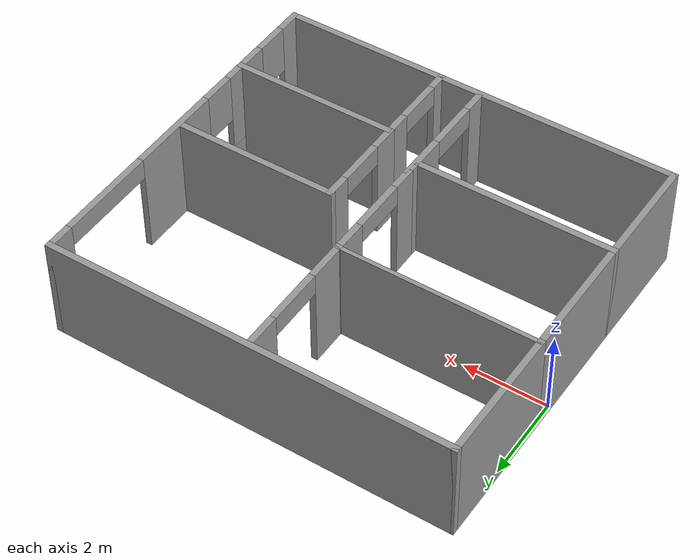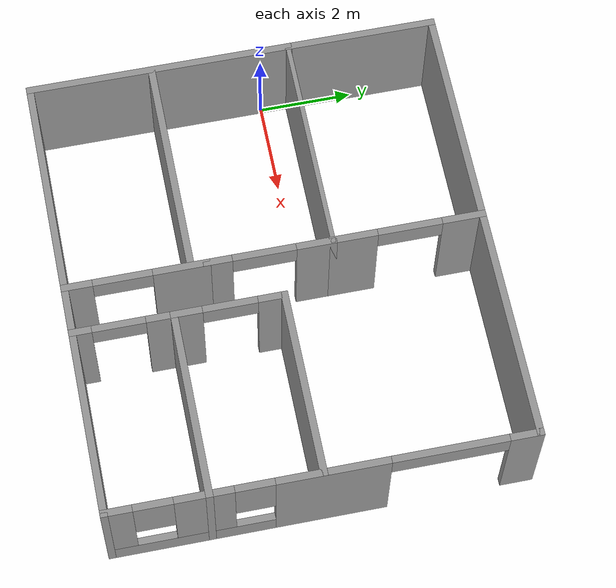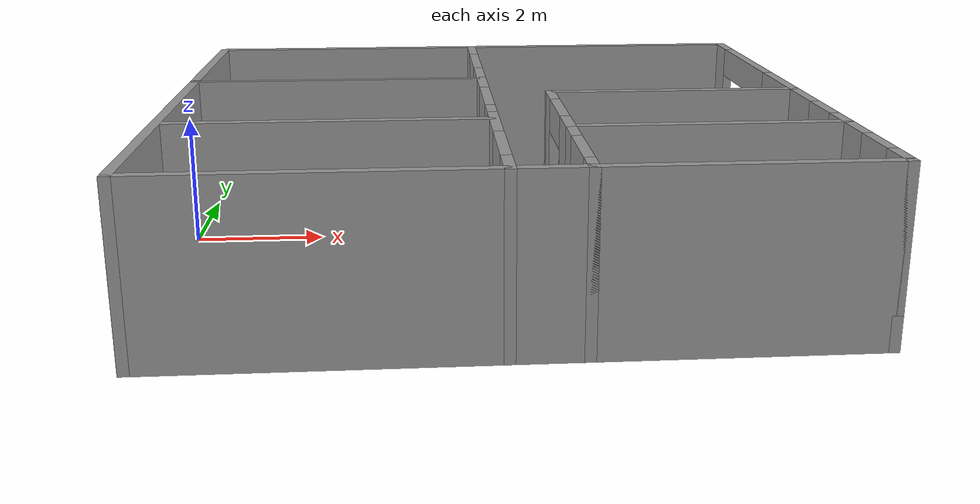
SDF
<?xml version='1.0'?>
<sdf version='1.6'>
  <model name='wall_real'>
    <pose frame=''>4.75 -0.6 0 0 -0 0</pose>
    <link name='Wall_0'>
      <collision name='Wall_0_Collision'>
        <geometry>
          <box>
            <size>3.25 0.15 2.5</size>
          </box>
        </geometry>
        <pose frame=''>0 0 1.25 0 -0 0</pose>
      </collision>
      <visual name='Wall_0_Visual'>
        <pose frame=''>0 0 1.25 0 -0 0</pose>
        <geometry>
          <box>
            <size>3.25 0.15 2.5</size>
          </box>
        </geometry>
        <material>
          <script>
            <uri>file://media/materials/scripts/gazebo.material</uri>
            <name>Gazebo/Grey</name>
          </script>
          <ambient>1 1 1 1</ambient>
        </material>
        <meta>
          <layer>0</layer>
        </meta>
      </visual>
      <pose frame=''>-4.75 2.75 0 0 -0 -1.5708</pose>
    </link>
    <link name='Wall_11'>
      <collision name='Wall_11_Collision'>
        <geometry>
          <box>
            <size>4 0.15 2.5</size>
          </box>
        </geometry>
        <pose frame=''>0 0 1.25 0 -0 0</pose>
      </collision>
      <visual name='Wall_11_Visual'>
        <pose frame=''>0 0 1.25 0 -0 0</pose>
        <geometry>
          <box>
            <size>4 0.15 2.5</size>
          </box>
        </geometry>
        <material>
          <script>
            <uri>file://media/materials/scripts/gazebo.material</uri>
            <name>Gazebo/Grey</name>
          </script>
          <ambient>1 1 1 1</ambient>
        </material>
        <meta>
          <layer>0</layer>
        </meta>
      </visual>
      <pose frame=''>2.825 -2.25 0 0 -0 3.14159</pose>
    </link>
    <link name='Wall_13'>
      <pose frame=''>0.9 -1.125 0 0 -0 -1.5708</pose>
      <visual name='Wall_13_Visual_0'>
        <pose frame=''>-0.890011 0 1.25 0 -0 0</pose>
        <geometry>
          <box>
            <size>0.619978 0.15 2.5</size>
          </box>
        </geometry>
        <material>
          <script>
            <uri>file://media/materials/scripts/gazebo.material</uri>
            <name>Gazebo/Grey</name>
          </script>
          <ambient>1 1 1 1</ambient>
        </material>
        <meta>
          <layer>0</layer>
        </meta>
      </visual>
      <collision name='Wall_13_Collision_0'>
        <geometry>
          <box>
            <size>0.619978 0.15 2.5</size>
          </box>
        </geometry>
        <pose frame=''>-0.890011 0 1.25 0 -0 0</pose>
      </collision>
      <visual name='Wall_13_Visual_1'>
        <pose frame=''>0.873674 0 1.25 0 -0 0</pose>
        <geometry>
          <box>
            <size>0.652651 0.15 2.5</size>
          </box>
        </geometry>
        <material>
          <script>
            <uri>file://media/materials/scripts/gazebo.material</uri>
            <name>Gazebo/Grey</name>
          </script>
          <ambient>1 1 1 1</ambient>
        </material>
        <meta>
          <layer>0</layer>
        </meta>
      </visual>
      <collision name='Wall_13_Collision_1'>
        <geometry>
          <box>
            <size>0.652651 0.15 2.5</size>
          </box>
        </geometry>
        <pose frame=''>0.873674 0 1.25 0 -0 0</pose>
      </collision>
      <visual name='Wall_13_Visual_2'>
        <pose frame=''>-0.016337 0 2.25 0 -0 0</pose>
        <geometry>
          <box>
            <size>1.12737 0.15 0.5</size>
          </box>
        </geometry>
        <material>
          <script>
            <uri>file://media/materials/scripts/gazebo.material</uri>
            <name>Gazebo/Grey</name>
          </script>
          <ambient>1 1 1 1</ambient>
        </material>
        <meta>
          <layer>0</layer>
        </meta>
      </visual>
      <collision name='Wall_13_Collision_2'>
        <geometry>
          <box>
            <size>1.12737 0.15 0.5</size>
          </box>
        </geometry>
        <pose frame=''>-0.016337 0 2.25 0 -0 0</pose>
      </collision>
    </link>
    <link name='Wall_14'>
      <pose frame=''>0.9 -3.275 0 0 -0 -1.5708</pose>
      <visual name='Wall_14_Visual_0'>
        <pose frame=''>-0.778157 0 1.25 0 -0 0</pose>
        <geometry>
          <box>
            <size>0.643686 0.15 2.5</size>
          </box>
        </geometry>
        <material>
          <script>
            <uri>file://media/materials/scripts/gazebo.material</uri>
            <name>Gazebo/Grey</name>
          </script>
          <ambient>1 1 1 1</ambient>
        </material>
        <meta>
          <layer>0</layer>
        </meta>
      </visual>
      <collision name='Wall_14_Collision_0'>
        <geometry>
          <box>
            <size>0.643686 0.15 2.5</size>
          </box>
        </geometry>
        <pose frame=''>-0.778157 0 1.25 0 -0 0</pose>
      </collision>
      <visual name='Wall_14_Visual_1'>
        <pose frame=''>0.868038 0 1.25 0 -0 0</pose>
        <geometry>
          <box>
            <size>0.463923 0.15 2.5</size>
          </box>
        </geometry>
        <material>
          <script>
            <uri>file://media/materials/scripts/gazebo.material</uri>
            <name>Gazebo/Grey</name>
          </script>
          <ambient>1 1 1 1</ambient>
        </material>
        <meta>
          <layer>0</layer>
        </meta>
      </visual>
      <collision name='Wall_14_Collision_1'>
        <geometry>
          <box>
            <size>0.463923 0.15 2.5</size>
          </box>
        </geometry>
        <pose frame=''>0.868038 0 1.25 0 -0 0</pose>
      </collision>
      <visual name='Wall_14_Visual_2'>
        <pose frame=''>0.089881 0 2.25 0 -0 0</pose>
        <geometry>
          <box>
            <size>1.09239 0.15 0.5</size>
          </box>
        </geometry>
        <material>
          <script>
            <uri>file://media/materials/scripts/gazebo.material</uri>
            <name>Gazebo/Grey</name>
          </script>
          <ambient>1 1 1 1</ambient>
        </material>
        <meta>
          <layer>0</layer>
        </meta>
      </visual>
      <collision name='Wall_14_Collision_2'>
        <geometry>
          <box>
            <size>1.09239 0.15 0.5</size>
          </box>
        </geometry>
        <pose frame=''>0.089881 0 2.25 0 -0 0</pose>
      </collision>
    </link>
    <link name='Wall_16'>
      <pose frame=''>-0.1 -0.1 0 0 -0 -1.5708</pose>
      <visual name='Wall_16_Visual_0'>
        <pose frame=''>-0.957502 0 1.25 0 -0 0</pose>
        <geometry>
          <box>
            <size>0.834995 0.15 2.5</size>
          </box>
        </geometry>
        <material>
          <script>
            <uri>file://media/materials/scripts/gazebo.material</uri>
            <name>Gazebo/Grey</name>
          </script>
          <ambient>1 1 1 1</ambient>
        </material>
        <meta>
          <layer>0</layer>
        </meta>
      </visual>
      <collision name='Wall_16_Collision_0'>
        <geometry>
          <box>
            <size>0.834995 0.15 2.5</size>
          </box>
        </geometry>
        <pose frame=''>-0.957502 0 1.25 0 -0 0</pose>
      </collision>
      <visual name='Wall_16_Visual_1'>
        <pose frame=''>1.07681 0 1.25 0 -0 0</pose>
        <geometry>
          <box>
            <size>0.59638 0.15 2.5</size>
          </box>
        </geometry>
        <material>
          <script>
            <uri>file://media/materials/scripts/gazebo.material</uri>
            <name>Gazebo/Grey</name>
          </script>
          <ambient>1 1 1 1</ambient>
        </material>
        <meta>
          <layer>0</layer>
        </meta>
      </visual>
      <collision name='Wall_16_Collision_1'>
        <geometry>
          <box>
            <size>0.59638 0.15 2.5</size>
          </box>
        </geometry>
        <pose frame=''>1.07681 0 1.25 0 -0 0</pose>
      </collision>
      <visual name='Wall_16_Visual_2'>
        <pose frame=''>0.119307 0 2.25 0 -0 0</pose>
        <geometry>
          <box>
            <size>1.31862 0.15 0.5</size>
          </box>
        </geometry>
        <material>
          <script>
            <uri>file://media/materials/scripts/gazebo.material</uri>
            <name>Gazebo/Grey</name>
          </script>
          <ambient>1 1 1 1</ambient>
        </material>
        <meta>
          <layer>0</layer>
        </meta>
      </visual>
      <collision name='Wall_16_Collision_2'>
        <geometry>
          <box>
            <size>1.31862 0.15 0.5</size>
          </box>
        </geometry>
        <pose frame=''>0.119307 0 2.25 0 -0 0</pose>
      </collision>
    </link>
    <link name='Wall_18'>
      <pose frame=''>-0.1 -2.85 0 0 -0 -1.5708</pose>
      <visual name='Wall_18_Visual_0'>
        <pose frame=''>-0.933477 0 1.25 0 -0 0</pose>
        <geometry>
          <box>
            <size>1.18305 0.15 2.5</size>
          </box>
        </geometry>
        <material>
          <script>
            <uri>file://media/materials/scripts/gazebo.material</uri>
            <name>Gazebo/Grey</name>
          </script>
          <ambient>1 1 1 1</ambient>
        </material>
        <meta>
          <layer>0</layer>
        </meta>
      </visual>
      <collision name='Wall_18_Collision_0'>
        <geometry>
          <box>
            <size>1.18305 0.15 2.5</size>
          </box>
        </geometry>
        <pose frame=''>-0.933477 0 1.25 0 -0 0</pose>
      </collision>
      <visual name='Wall_18_Visual_1'>
        <pose frame=''>1.20344 0 1.25 0 -0 0</pose>
        <geometry>
          <box>
            <size>0.643126 0.15 2.5</size>
          </box>
        </geometry>
        <material>
          <script>
            <uri>file://media/materials/scripts/gazebo.material</uri>
            <name>Gazebo/Grey</name>
          </script>
          <ambient>1 1 1 1</ambient>
        </material>
        <meta>
          <layer>0</layer>
        </meta>
      </visual>
      <collision name='Wall_18_Collision_1'>
        <geometry>
          <box>
            <size>0.643126 0.15 2.5</size>
          </box>
        </geometry>
        <pose frame=''>1.20344 0 1.25 0 -0 0</pose>
      </collision>
      <visual name='Wall_18_Visual_2'>
        <pose frame=''>0.26996 0 2.25 0 -0 0</pose>
        <geometry>
          <box>
            <size>1.22383 0.15 0.5</size>
          </box>
        </geometry>
        <material>
          <script>
            <uri>file://media/materials/scripts/gazebo.material</uri>
            <name>Gazebo/Grey</name>
          </script>
          <ambient>1 1 1 1</ambient>
        </material>
        <meta>
          <layer>0</layer>
        </meta>
      </visual>
      <collision name='Wall_18_Collision_2'>
        <geometry>
          <box>
            <size>1.22383 0.15 0.5</size>
          </box>
        </geometry>
        <pose frame=''>0.26996 0 2.25 0 -0 0</pose>
      </collision>
    </link>
    <link name='Wall_2'>
      <collision name='Wall_2_Collision'>
        <geometry>
          <box>
            <size>5.65 0.15 2.5</size>
          </box>
        </geometry>
        <pose frame=''>0 0 1.25 0 -0 0</pose>
      </collision>
      <visual name='Wall_2_Visual'>
        <pose frame=''>0 0 1.25 0 -0 0</pose>
        <geometry>
          <box>
            <size>5.65 0.15 2.5</size>
          </box>
        </geometry>
        <material>
          <script>
            <uri>file://media/materials/scripts/gazebo.material</uri>
            <name>Gazebo/Grey</name>
          </script>
          <ambient>1 1 1 1</ambient>
        </material>
        <meta>
          <layer>0</layer>
        </meta>
      </visual>
      <pose frame=''>-4.75 -1.55 0 0 -0 -1.5708</pose>
    </link>
    <link name='Wall_20'>
      <collision name='Wall_20_Collision'>
        <geometry>
          <box>
            <size>4.8 0.15 2.5</size>
          </box>
        </geometry>
        <pose frame=''>0 0 1.25 0 -0 0</pose>
      </collision>
      <visual name='Wall_20_Visual'>
        <pose frame=''>0 0 1.25 0 -0 0</pose>
        <geometry>
          <box>
            <size>4.8 0.15 2.5</size>
          </box>
        </geometry>
        <material>
          <script>
            <uri>file://media/materials/scripts/gazebo.material</uri>
            <name>Gazebo/Grey</name>
          </script>
          <ambient>1 1 1 1</ambient>
        </material>
        <meta>
          <layer>0</layer>
        </meta>
      </visual>
      <pose frame=''>-2.425 -1.72408 0 0 -0 3.14159</pose>
    </link>
    <link name='Wall_22'>
      <pose frame=''>-0.1 2.75 0 0 -0 1.5708</pose>
      <visual name='Wall_22_Visual_0'>
        <pose frame=''>-1.12521 0 1.25 0 -0 0</pose>
        <geometry>
          <box>
            <size>0.999582 0.15 2.5</size>
          </box>
        </geometry>
        <material>
          <script>
            <uri>file://media/materials/scripts/gazebo.material</uri>
            <name>Gazebo/Grey</name>
          </script>
          <ambient>1 1 1 1</ambient>
        </material>
        <meta>
          <layer>0</layer>
        </meta>
      </visual>
      <collision name='Wall_22_Collision_0'>
        <geometry>
          <box>
            <size>0.999582 0.15 2.5</size>
          </box>
        </geometry>
        <pose frame=''>-1.12521 0 1.25 0 -0 0</pose>
      </collision>
      <visual name='Wall_22_Visual_1'>
        <pose frame=''>1.16953 0 1.25 0 -0 0</pose>
        <geometry>
          <box>
            <size>0.910936 0.15 2.5</size>
          </box>
        </geometry>
        <material>
          <script>
            <uri>file://media/materials/scripts/gazebo.material</uri>
            <name>Gazebo/Grey</name>
          </script>
          <ambient>1 1 1 1</ambient>
        </material>
        <meta>
          <layer>0</layer>
        </meta>
      </visual>
      <collision name='Wall_22_Collision_1'>
        <geometry>
          <box>
            <size>0.910936 0.15 2.5</size>
          </box>
        </geometry>
        <pose frame=''>1.16953 0 1.25 0 -0 0</pose>
      </collision>
      <visual name='Wall_22_Visual_2'>
        <pose frame=''>0.044323 0 2.25 0 -0 0</pose>
        <geometry>
          <box>
            <size>1.33948 0.15 0.5</size>
          </box>
        </geometry>
        <material>
          <script>
            <uri>file://media/materials/scripts/gazebo.material</uri>
            <name>Gazebo/Grey</name>
          </script>
          <ambient>1 1 1 1</ambient>
        </material>
        <meta>
          <layer>0</layer>
        </meta>
      </visual>
      <collision name='Wall_22_Collision_2'>
        <geometry>
          <box>
            <size>1.33948 0.15 0.5</size>
          </box>
        </geometry>
        <pose frame=''>0.044323 0 2.25 0 -0 0</pose>
      </collision>
    </link>
    <link name='Wall_24'>
      <collision name='Wall_24_Collision'>
        <geometry>
          <box>
            <size>9.65 0.15 2.5</size>
          </box>
        </geometry>
        <pose frame=''>0 0 1.25 0 -0 0</pose>
      </collision>
      <visual name='Wall_24_Visual'>
        <pose frame=''>0 0 1.25 0 -0 0</pose>
        <geometry>
          <box>
            <size>9.65 0.15 2.5</size>
          </box>
        </geometry>
        <material>
          <script>
            <uri>file://media/materials/scripts/gazebo.material</uri>
            <name>Gazebo/Grey</name>
          </script>
          <ambient>1 1 1 1</ambient>
        </material>
        <meta>
          <layer>0</layer>
        </meta>
      </visual>
      <pose frame=''>-0 4.3 0 0 -0 0</pose>
    </link>
    <link name='Wall_26'>
      <collision name='Wall_26_Collision'>
        <geometry>
          <box>
            <size>9.65 0.15 2.5</size>
          </box>
        </geometry>
        <pose frame=''>0 0 1.25 0 -0 0</pose>
      </collision>
      <visual name='Wall_26_Visual'>
        <pose frame=''>0 0 1.25 0 -0 0</pose>
        <geometry>
          <box>
            <size>9.65 0.15 2.5</size>
          </box>
        </geometry>
        <material>
          <script>
            <uri>file://media/materials/scripts/gazebo.material</uri>
            <name>Gazebo/Grey</name>
          </script>
          <ambient>1 1 1 1</ambient>
        </material>
        <meta>
          <layer>0</layer>
        </meta>
      </visual>
      <pose frame=''>-0 -4.3 0 0 -0 0</pose>
    </link>
    <link name='Wall_4'>
      <collision name='Wall_4_Collision'>
        <geometry>
          <box>
            <size>4.75 0.1 2.5</size>
          </box>
        </geometry>
        <pose frame=''>0 0 1.25 0 -0 0</pose>
      </collision>
      <visual name='Wall_4_Visual'>
        <pose frame=''>0 0 1.25 0 -0 0</pose>
        <geometry>
          <box>
            <size>4.75 0.1 2.5</size>
          </box>
        </geometry>
        <material>
          <script>
            <uri>file://media/materials/scripts/gazebo.material</uri>
            <name>Gazebo/Grey</name>
          </script>
          <ambient>1 1 1 1</ambient>
        </material>
        <meta>
          <layer>0</layer>
        </meta>
      </visual>
      <pose frame=''>-2.425 1.2 0 0 -0 0</pose>
    </link>
    <link name='Wall_6'>
      <pose frame=''>4.75 -0 0 0 -0 -1.5708</pose>
      <visual name='Wall_6_Visual_0'>
        <pose frame=''>-4.03377 0 1.25 0 -0 0</pose>
        <geometry>
          <box>
            <size>0.682464 0.15 2.5</size>
          </box>
        </geometry>
        <material>
          <script>
            <uri>file://media/materials/scripts/gazebo.material</uri>
            <name>Gazebo/Grey</name>
          </script>
          <ambient>1 1 1 1</ambient>
        </material>
        <meta>
          <layer>0</layer>
        </meta>
      </visual>
      <collision name='Wall_6_Collision_0'>
        <geometry>
          <box>
            <size>0.682464 0.15 2.5</size>
          </box>
        </geometry>
        <pose frame=''>-4.03377 0 1.25 0 -0 0</pose>
      </collision>
      <visual name='Wall_6_Visual_1'>
        <pose frame=''>-0.194728 0 1.25 0 -0 0</pose>
        <geometry>
          <box>
            <size>2.29234 0.15 2.5</size>
          </box>
        </geometry>
        <material>
          <script>
            <uri>file://media/materials/scripts/gazebo.material</uri>
            <name>Gazebo/Grey</name>
          </script>
          <ambient>1 1 1 1</ambient>
        </material>
        <meta>
          <layer>0</layer>
        </meta>
      </visual>
      <collision name='Wall_6_Collision_1'>
        <geometry>
          <box>
            <size>2.29234 0.15 2.5</size>
          </box>
        </geometry>
        <pose frame=''>-0.194728 0 1.25 0 -0 0</pose>
      </collision>
      <visual name='Wall_6_Visual_2'>
        <pose frame=''>2.66322 0 0.25 0 -0 0</pose>
        <geometry>
          <box>
            <size>3.42356 0.15 0.5</size>
          </box>
        </geometry>
        <material>
          <script>
            <uri>file://media/materials/scripts/gazebo.material</uri>
            <name>Gazebo/Grey</name>
          </script>
          <ambient>1 1 1 1</ambient>
        </material>
        <meta>
          <layer>0</layer>
        </meta>
      </visual>
      <collision name='Wall_6_Collision_2'>
        <geometry>
          <box>
            <size>3.42356 0.15 0.5</size>
          </box>
        </geometry>
        <pose frame=''>2.66322 0 0.25 0 -0 0</pose>
      </collision>
      <visual name='Wall_6_Visual_3'>
        <pose frame=''>2.34857 0 1.5 0 -0 0</pose>
        <geometry>
          <box>
            <size>1.19426 0.15 2</size>
          </box>
        </geometry>
        <material>
          <script>
            <uri>file://media/materials/scripts/gazebo.material</uri>
            <name>Gazebo/Grey</name>
          </script>
          <ambient>1 1 1 1</ambient>
        </material>
        <meta>
          <layer>0</layer>
        </meta>
      </visual>
      <collision name='Wall_6_Collision_3'>
        <geometry>
          <box>
            <size>1.19426 0.15 2</size>
          </box>
        </geometry>
        <pose frame=''>2.34857 0 1.5 0 -0 0</pose>
      </collision>
      <visual name='Wall_6_Visual_4'>
        <pose frame=''>4.06035 0 1.5 0 -0 0</pose>
        <geometry>
          <box>
            <size>0.629299 0.15 2</size>
          </box>
        </geometry>
        <material>
          <script>
            <uri>file://media/materials/scripts/gazebo.material</uri>
            <name>Gazebo/Grey</name>
          </script>
          <ambient>1 1 1 1</ambient>
        </material>
        <meta>
          <layer>0</layer>
        </meta>
      </visual>
      <collision name='Wall_6_Collision_4'>
        <geometry>
          <box>
            <size>0.629299 0.15 2</size>
          </box>
        </geometry>
        <pose frame=''>4.06035 0 1.5 0 -0 0</pose>
      </collision>
      <visual name='Wall_6_Visual_5'>
        <pose frame=''>1.35144 0 1.9 0 -0 0</pose>
        <geometry>
          <box>
            <size>0.8 0.15 1.2</size>
          </box>
        </geometry>
        <material>
          <script>
            <uri>file://media/materials/scripts/gazebo.material</uri>
            <name>Gazebo/Grey</name>
          </script>
          <ambient>1 1 1 1</ambient>
        </material>
        <meta>
          <layer>0</layer>
        </meta>
      </visual>
      <collision name='Wall_6_Collision_5'>
        <geometry>
          <box>
            <size>0.8 0.15 1.2</size>
          </box>
        </geometry>
        <pose frame=''>1.35144 0 1.9 0 -0 0</pose>
      </collision>
      <visual name='Wall_6_Visual_6'>
        <pose frame=''>3.3457 0 1.9 0 -0 0</pose>
        <geometry>
          <box>
            <size>0.8 0.15 1.2</size>
          </box>
        </geometry>
        <material>
          <script>
            <uri>file://media/materials/scripts/gazebo.material</uri>
            <name>Gazebo/Grey</name>
          </script>
          <ambient>1 1 1 1</ambient>
        </material>
        <meta>
          <layer>0</layer>
        </meta>
      </visual>
      <collision name='Wall_6_Collision_6'>
        <geometry>
          <box>
            <size>0.8 0.15 1.2</size>
          </box>
        </geometry>
        <pose frame=''>3.3457 0 1.9 0 -0 0</pose>
      </collision>
      <visual name='Wall_6_Visual_7'>
        <pose frame=''>-2.51672 0 2.25 0 -0 0</pose>
        <geometry>
          <box>
            <size>2.35164 0.15 0.5</size>
          </box>
        </geometry>
        <material>
          <script>
            <uri>file://media/materials/scripts/gazebo.material</uri>
            <name>Gazebo/Grey</name>
          </script>
          <ambient>1 1 1 1</ambient>
        </material>
        <meta>
          <layer>0</layer>
        </meta>
      </visual>
      <collision name='Wall_6_Collision_7'>
        <geometry>
          <box>
            <size>2.35164 0.15 0.5</size>
          </box>
        </geometry>
        <pose frame=''>-2.51672 0 2.25 0 -0 0</pose>
      </collision>
    </link>
    <link name='Wall_8'>
      <collision name='Wall_8_Collision'>
        <geometry>
          <box>
            <size>4 0.15 2.5</size>
          </box>
        </geometry>
        <pose frame=''>0 0 1.25 0 -0 0</pose>
      </collision>
      <visual name='Wall_8_Visual'>
        <pose frame=''>0 0 1.25 0 -0 0</pose>
        <geometry>
          <box>
            <size>4 0.15 2.5</size>
          </box>
        </geometry>
        <material>
          <script>
            <uri>file://media/materials/scripts/gazebo.material</uri>
            <name>Gazebo/Grey</name>
          </script>
          <ambient>1 1 1 1</ambient>
        </material>
        <meta>
          <layer>0</layer>
        </meta>
      </visual>
      <pose frame=''>2.825 -0 0 0 -0 3.14159</pose>
    </link>
    <static>1</static>
  </model>
</sdf>
